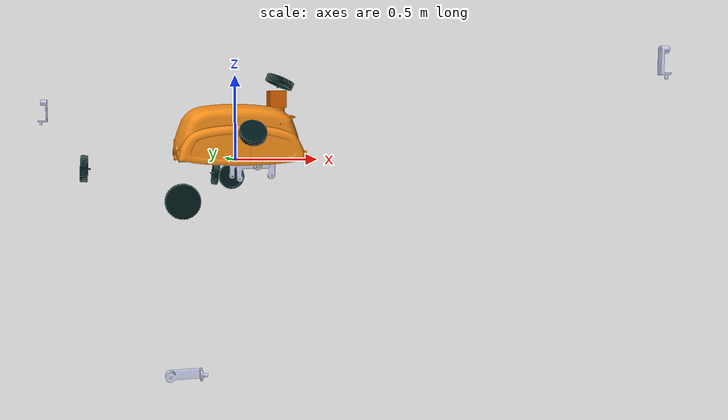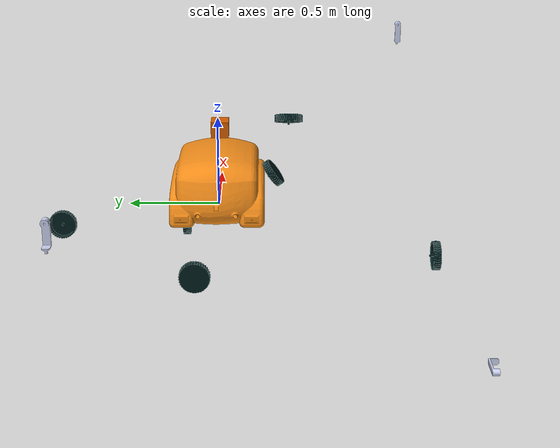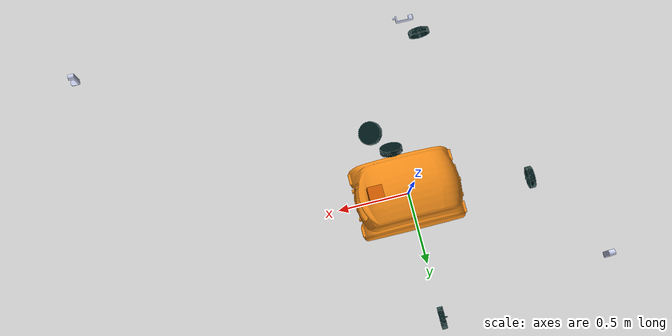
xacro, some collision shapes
<?xml version="1.0"?>

<robot name="mybot" xmlns:xacro="http://www.ros.org/wiki/xacro">

  <property name="PI" value="3.1415926535897931"/>

  <include filename="$(find mybot_description)/urdf/mybot.gazebo" />
  <include filename="$(find mybot_description)/urdf/materials.xacro" />
  <include filename="$(find mybot_description)/urdf/macros.xacro" />
  <link name="footprint" />

  <joint name="base_joint" type="fixed">
    <parent link="footprint"/>
    <child link="chassis"/>
  </joint>

  <link name="chassis">
    <collision>
      <origin xyz="0 0 0" rpy="0 0 0"/>
      <geometry>
        <mesh filename="$(find mybot_description)/meshes/base_link.dae"/>
      </geometry>
    </collision>

    <visual>
      <origin xyz="0 0 0" rpy="0 0 0"/>
      <geometry>
        <mesh filename="$(find mybot_description)/meshes/base_link.dae"/>
      </geometry>
      <material name="orange"/>
    </visual>

    <inertial>
      <origin
        xyz="0.015949855877801 0.000103286146624693 0.164331382997009"
        rpy="0 0 0" />
      <mass
        value="5.9977" />
      <inertia
        ixx="0.41015032534565"
        ixy="0.00014896595327685"
        ixz="-0.117066888026324"
        iyy="0.864297044074108"
        iyz="4.29109746619749E-05"
        izz="1.03198412493106"  />
    </inertial>
  </link>

  <!-- Pivot_Link -->
  <pivot pv="Pivot_left" neg="1"/>
  <pivot pv="Pivot_right" neg="-1"/>
  <!-- Bogie_left_Link -->
  <bogie ch="Bogie_left" pr="Pivot_left" num="1"/>
  <bogie ch="Bogie_right" pr="Pivot_right" num="-1"/>
  <!-- Frame_Link -->
  <sterring st="Frame_rear_left"  pr="Pivot_left" ori="1" xyz_ori_joint="-0.2512 0.0758502820930624 0.159624873353601" rpy_ori_joint="-1.57079632679489 0 3.14159265358979"/>
  <sterring st="Frame_front_left" pr="Bogie_left" ori="1" xyz_ori_joint="0.0230242813783894 -0.161600997729002 -0.00600000000035122" rpy_ori_joint="1.57079632679489 0 -0.965625096203858"/>
  <sterring st="Frame_front_right" pr="Bogie_right" ori="-1" xyz_ori_joint="0.0230242813783506 0.161600997729037 -0.00600000000014898" rpy_ori_joint="-1.57079632679501 0 0.965625096203942"/>
  <sterring st="Frame_rear_right" pr="Pivot_right" ori="1" xyz_ori_joint="-0.251199999999933 -0.0758502820931083 0.159624873353708" rpy_ori_joint="1.57079632679479 0 3.1415926535897"/>
  <!-- Wheel -->
  <wheel ch="Wheel_mid_left" pr="Bogie_left" ori="1" xyz_ori_joint="0.00282985115710119 0.125984094005667 0.00954399441673065" rpy_ori_joint="0 0 1.54833813158444"/>
  <wheel ch="Wheel_front_left" pr="Frame_front_left" ori="1" xyz_ori_joint="0 0.0165439944167309 -0.145999999999945" rpy_ori_joint="1.570796326795 0 3.14159265358969"/>
  <wheel ch="Wheel_rear_left" pr="Frame_rear_left" ori="1" xyz_ori_joint="0 -0.0165439944167308 -0.146" rpy_ori_joint="1.570796326795 0 0"/>
  <wheel ch="Wheel_mid_right" pr="Bogie_right" ori="1" xyz_ori_joint="0.00282985115709367 -0.125984094005641 0.00954399441663158" rpy_ori_joint="0 0 -1.5483381315845"/>
  <wheel ch="Wheel_front_right" pr="Frame_front_right" ori="1" xyz_ori_joint="0 -0.0165439944167298 -0.145999999999915" rpy_ori_joint="-1.5707963267949 0 3.14159265358969"/>
  <wheel ch="Wheel_rear_right" pr="Frame_rear_right" ori="1" xyz_ori_joint="0 0.0165439944167314 -0.145999999999968" rpy_ori_joint="-1.57079632679489 0 0"/>

  <link name="Pivot_mid_Link">
    <inertial>
      <origin
        xyz="-3.48456990945101E-06 2.25518794118029E-05 0.0732940910671185"
        rpy="0 0 0" />
      <mass
        value="0.104784306017796" />
      <inertia
        ixx="0.00030646009753961"
        ixy="-1.19640283602552E-08"
        ixz="-2.1900979102239E-08"
        iyy="0.000306535681364799"
        iyz="1.41741666936082E-07"
        izz="1.49479394387937E-05" />
    </inertial>
    <visual>
      <origin
        xyz="0 0 0"
        rpy="0 0 0" />
      <geometry>
        <mesh
          filename="$(find mybot_description)/meshes/Pivot_mid_Link.dae" />
      </geometry>
      <material
        name="">
        <color
          rgba="0.776470588235294 0.756862745098039 0.737254901960784 1" />
      </material>
    </visual>
    <collision>
      <origin
        xyz="0 0 0"
        rpy="0 0 0" />
      <geometry>
        <mesh
          filename="$(find mybot_description)/meshes/Pivot_mid_Link.dae" />
      </geometry>
    </collision>
  </link>
  <joint name="Pivot_mid_joint"
    type="revolute">
    <origin
      xyz="-0.0147751266463989 0 0.117"
      rpy="-1.5707963267949 0 1.5707963267949" />
    <parent
      link="chassis" />
    <child
      link="Pivot_mid_Link" />
    <axis
      xyz="0 0 -1" />
    <safety_controller
      k_velocity="0" />
    <joint_properties damping="0.0" friction="0.0"/>
    <limit lower="-0.4" upper="0.4" effort="10000.0" velocity="10.0"/>
  </joint>

  <gazebo reference="Pivot_mid_Link">
    <self_collide>1</self_collide>
  </gazebo>

  <!-- camera front -->
  <joint name="camera_joint_front" type="fixed">
    <origin xyz="0.383 0 0.080" rpy="0 0 0"/>
    <parent link="chassis"/>
    <child link="camera_link"/>
  </joint>

  <link name="camera_link">
    <collision>
      <origin xyz="0.005 0.011 0.013" rpy="0 0 0"/>
      <geometry>
        <box size="0.015 0.030 0.027"/>
      </geometry>
    </collision>
  </link>

 <joint name="camera_rgb_joint" type="fixed">
    <origin xyz="0.003 0.011 0.009" rpy="0 0 0"/>
    <parent link="camera_link"/>
    <child link="camera_rgb_frame"/>
  </joint>
  <link name="camera_rgb_frame"/>

  <joint name="camera_rgb_optical_joint" type="fixed">
    <origin xyz="0 0 0" rpy="-1.57 0 -1.57"/>
    <parent link="camera_rgb_frame"/>
    <child link="camera_rgb_optical_frame"/>
  </joint>
  <link name="camera_rgb_optical_frame"/>

  <gazebo reference="camera_rgb_frame">
    <sensor type="depth" name="Pi Camera">
      <always_on>true</always_on>
      <visualize>false</visualize>
      <camera>
          <horizontal_fov>1.085595</horizontal_fov>
          <image>
              <width>640</width>
              <height>480</height>
              <format>R8G8B8</format>
          </image>
          <clip>
              <near>0.03</near>
              <far>100</far>
          </clip>
      </camera>
      <plugin name="camera_controller" filename="libgazebo_ros_openni_kinect.so">
      <!-- libgazebo_ros_openni_kinect -->
        <alwaysOn>true</alwaysOn>
        <updateRate>30.0</updateRate>
        <cameraName>camera</cameraName>
        <frameName>camera_rgb_optical_frame</frameName>
        <imageTopicName>rgb/image_raw</imageTopicName>
        <cameraInfoTopicName>rgb/camera_info</cameraInfoTopicName>

        <depthImageTopicName>rgb/image_depth</depthImageTopicName>
        <depthImageInfoTopicName>rgb/camera_depth_info</depthImageInfoTopicName>
        <pointCloudTopicName>rgb/image_depth/points</pointCloudTopicName>

        <pointCloudCutoff>0.05</pointCloudCutoff>
        <pointCloudCutoffMax>10.0</pointCloudCutoffMax>
        <rangeMax>30.0</rangeMax>

        <hackBaseline>0.07</hackBaseline>
        <distortionK1>0.0</distortionK1>
        <distortionK2>0.0</distortionK2>
        <distortionK3>0.0</distortionK3>
        <distortionT1>0.0</distortionT1>
        <distortionT2>0.0</distortionT2>
      </plugin>
    </sensor>
  </gazebo>

  <!-- camera left -->
  <joint name="camera_joint_left" type="fixed">
    <origin xyz="0.010 0.220 0.228" rpy="0 0 1.57"/>
    <parent link="chassis"/>
    <child link="camera_link_left"/>
  </joint>

  <link name="camera_link_left">
    <collision>
      <origin xyz="0.005 0.011 0.013" rpy="0 0 0"/>
      <geometry>
        <box size="0.015 0.030 0.027"/>
      </geometry>
    </collision>
  </link>

 <joint name="camera_rgb_joint_left" type="fixed">
    <origin xyz="0.003 0.011 0.009" rpy="0 0 0"/>
    <parent link="camera_link_left"/>
    <child link="camera_rgb_frame_left"/>
  </joint>
  <link name="camera_rgb_frame_left"/>

  <joint name="camera_rgb_optical_joint_left" type="fixed">
    <origin xyz="0 0 0" rpy="-1.57 0 -1.57"/>
    <parent link="camera_rgb_frame_left"/>
    <child link="camera_rgb_optical_frame_left"/>
  </joint>
  <link name="camera_rgb_optical_frame_left"/>

  <gazebo reference="camera_rgb_frame_left">
    <sensor type="depth" name="Pi Camera">
      <always_on>true</always_on>
      <visualize>false</visualize>
      <camera>
          <horizontal_fov>1.085595</horizontal_fov>
          <image>
              <width>640</width>
              <height>480</height>
              <format>R8G8B8</format>
          </image>
          <clip>
              <near>0.03</near>
              <far>100</far>
          </clip>
      </camera>
      <plugin name="camera_controller" filename="libgazebo_ros_openni_kinect.so">
      <!-- libgazebo_ros_openni_kinect -->
        <alwaysOn>true</alwaysOn>
        <updateRate>30.0</updateRate>
        <cameraName>camera</cameraName>
        <frameName>camera_rgb_optical_frame_left</frameName>
        <imageTopicName>rgb_left/image_raw</imageTopicName>
        <cameraInfoTopicName>rgb_left/camera_info</cameraInfoTopicName>

        <depthImageTopicName>rgb_left/image_depth</depthImageTopicName>
        <depthImageInfoTopicName>rgb_left/camera_depth_info</depthImageInfoTopicName>
        <pointCloudTopicName>rgb_left/image_depth/points</pointCloudTopicName>

        <pointCloudCutoff>0.05</pointCloudCutoff>
        <pointCloudCutoffMax>10.0</pointCloudCutoffMax>
        <rangeMax>30.0</rangeMax>

        <hackBaseline>0.07</hackBaseline>
        <distortionK1>0.0</distortionK1>
        <distortionK2>0.0</distortionK2>
        <distortionK3>0.0</distortionK3>
        <distortionT1>0.0</distortionT1>
        <distortionT2>0.0</distortionT2>
      </plugin>
    </sensor>
  </gazebo>

  <!-- camera right -->
  <joint name="camera_joint_right" type="fixed">
    <origin xyz="0.010 -0.220 0.228" rpy="0 0 -1.57"/>
    <parent link="chassis"/>
    <child link="camera_link_right"/>
  </joint>

  <link name="camera_link_right">
    <collision>
      <origin xyz="0.005 0.011 0.013" rpy="0 0 0"/>
      <geometry>
        <box size="0.015 0.030 0.027"/>
      </geometry>
    </collision>
  </link>

 <joint name="camera_rgb_joint_right" type="fixed">
    <origin xyz="0.003 0.011 0.009" rpy="0 0 0"/>
    <parent link="camera_link_right"/>
    <child link="camera_rgb_frame_right"/>
  </joint>
  <link name="camera_rgb_frame_right"/>

  <joint name="camera_rgb_optical_joint_right" type="fixed">
    <origin xyz="0 0 0" rpy="-1.57 0 -1.57"/>
    <parent link="camera_rgb_frame_right"/>
    <child link="camera_rgb_optical_frame_right"/>
  </joint>
  <link name="camera_rgb_optical_frame_right"/>

  <gazebo reference="camera_rgb_frame_right">
    <sensor type="depth" name="Pi Camera">
      <always_on>true</always_on>
      <visualize>false</visualize>
      <camera>
          <horizontal_fov>1.085595</horizontal_fov>
          <image>
              <width>640</width>
              <height>480</height>
              <format>R8G8B8</format>
          </image>
          <clip>
              <near>0.03</near>
              <far>100</far>
          </clip>
      </camera>
      <plugin name="camera_controller" filename="libgazebo_ros_openni_kinect.so">
      <!-- libgazebo_ros_openni_kinect -->
        <alwaysOn>true</alwaysOn>
        <updateRate>30.0</updateRate>
        <cameraName>camera</cameraName>
        <frameName>camera_rgb_optical_frame_right</frameName>
        <imageTopicName>rgb_right/image_raw</imageTopicName>
        <cameraInfoTopicName>rgb_right/camera_info</cameraInfoTopicName>

        <depthImageTopicName>rgb_right/image_depth</depthImageTopicName>
        <depthImageInfoTopicName>rgb_right/camera_depth_info</depthImageInfoTopicName>
        <pointCloudTopicName>rgb_right/image_depth/points</pointCloudTopicName>

        <pointCloudCutoff>0.05</pointCloudCutoff>
        <pointCloudCutoffMax>10.0</pointCloudCutoffMax>
        <rangeMax>30.0</rangeMax>

        <hackBaseline>0.07</hackBaseline>
        <distortionK1>0.0</distortionK1>
        <distortionK2>0.0</distortionK2>
        <distortionK3>0.0</distortionK3>
        <distortionT1>0.0</distortionT1>
        <distortionT2>0.0</distortionT2>
      </plugin>
    </sensor>
  </gazebo>

  <!-- camera rear -->
  <joint name="camera_joint_rear" type="fixed">
    <origin xyz="-0.361 0 0.113" rpy="0 0 3.14"/>
    <parent link="chassis"/>
    <child link="camera_link_rear"/>
  </joint>

  <link name="camera_link_rear">
    <collision>
      <origin xyz="0.005 0.011 0.013" rpy="0 0 0"/>
      <geometry>
        <box size="0.015 0.030 0.027"/>
      </geometry>
    </collision>
  </link>

 <joint name="camera_rgb_joint_rear" type="fixed">
    <origin xyz="0.003 0.011 0.009" rpy="0 0 0"/>
    <parent link="camera_link_rear"/>
    <child link="camera_rgb_frame_rear"/>
  </joint>
  <link name="camera_rgb_frame_rear"/>

  <joint name="camera_rgb_optical_joint_rear" type="fixed">
    <origin xyz="0 0 0" rpy="-1.57 0 -1.57"/>
    <parent link="camera_rgb_frame_rear"/>
    <child link="camera_rgb_optical_frame_rear"/>
  </joint>
  <link name="camera_rgb_optical_frame_rear"/>

  <gazebo reference="camera_rgb_frame_rear">
    <sensor type="depth" name="Pi Camera">
      <always_on>true</always_on>
      <visualize>false</visualize>
      <camera>
          <horizontal_fov>1.085595</horizontal_fov>
          <image>
              <width>640</width>
              <height>480</height>
              <format>R8G8B8</format>
          </image>
          <clip>
              <near>0.03</near>
              <far>100</far>
          </clip>
      </camera>
      <plugin name="camera_controller" filename="libgazebo_ros_openni_kinect.so">
      <!-- libgazebo_ros_openni_kinect -->
        <alwaysOn>true</alwaysOn>
        <updateRate>30.0</updateRate>
        <cameraName>camera</cameraName>
        <frameName>camera_rgb_optical_frame_rear</frameName>
        <imageTopicName>rgb_rear/image_raw</imageTopicName>
        <cameraInfoTopicName>rgb_rear/camera_info</cameraInfoTopicName>

        <depthImageTopicName>rgb_rear/image_depth</depthImageTopicName>
        <depthImageInfoTopicName>rgb_rear/camera_depth_info</depthImageInfoTopicName>
        <pointCloudTopicName>rgb_rear/image_depth/points</pointCloudTopicName>

        <pointCloudCutoff>0.05</pointCloudCutoff>
        <pointCloudCutoffMax>10.0</pointCloudCutoffMax>
        <rangeMax>30.0</rangeMax>

        <hackBaseline>0.07</hackBaseline>
        <distortionK1>0.0</distortionK1>
        <distortionK2>0.0</distortionK2>
        <distortionK3>0.0</distortionK3>
        <distortionT1>0.0</distortionT1>
        <distortionT2>0.0</distortionT2>
      </plugin>
    </sensor>
  </gazebo>

  <!-- Hokuyo Laser -->
  <!-- laser -->
  <joint name="hokuyo_joint" type="fixed">
    <axis xyz="0 1 0" />
    <origin xyz="0.250 0.0 0.362" rpy="0 0 0"/>
    <parent link="chassis"/>
    <child link="hokuyo_link"/>
  </joint>

  <link name="hokuyo_link">
    <collision>
      <origin xyz="0 0 0" rpy="0 0 0"/>
      <geometry>
    <box size="0.1 0.1 0.1"/>
      </geometry>
    </collision>

    <visual>
      <origin xyz="0 0 0" rpy="0 0 0"/>
      <geometry>
        <mesh filename="$(find mybot_description)/meshes/hokuyo.dae"/>
      </geometry>
    </visual>

    <inertial>
      <mass value="1e-5" />
      <origin xyz="0 0 0" rpy="0 0 0"/>
      <inertia ixx="1e-6" ixy="0" ixz="0" iyy="1e-6" iyz="0" izz="1e-6" />
    </inertial>
  </link>

  <gazebo reference="hokuyo_link">
      <sensor type="ray" name="head_hokuyo_sensor">
        <pose>0 0 0 0 0 0</pose>
        <visualize>true</visualize>
        <update_rate>30</update_rate>
        <ray>
          <scan>

            <horizontal>
              <samples>720</samples>
              <resolution>1.0</resolution>
              <min_angle>1.57</min_angle>
              <max_angle>-1.57</max_angle>
            </horizontal>

          </scan>
          <range>
            <min>0.1</min>
            <max>10.0</max>
            <resolution>0.01</resolution>
          </range>
          <noise>
            <type>gaussian</type>
            <mean>0.0</mean>
            <stddev>0.01</stddev>
          </noise>
        </ray>
        <plugin name="gazebo_ros_head_hokuyo_controller" filename="libgazebo_ros_laser.so">
          <topicName>/husky/laser/scan</topicName>
          <frameName>hokuyo_link</frameName>
        </plugin>
      </sensor>
    </gazebo>

</robot>

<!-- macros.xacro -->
<robot>

<!-- ****************************************sterring******************************************** -->
    <macro name="sterring" params="st pr ori xyz_ori_joint rpy_ori_joint" >

      <link
        name="${st}_Link">
        <inertial>
          <origin
            xyz="${ori*-0.000100729773299224} ${ori*-0.022707717448498} -0.0946007357290982"
            rpy="0 0 0" />
          <mass
            value="1.110802029012366" />
          <inertia
            ixx="0.00032454182493778"
            ixy="-9.42745264395349E-08"
            ixz="${ori*1.05486102205035E-07}"
            iyy="0.000313625372879202"
            iyz="${ori*-1.07033038351386E-05}"
            izz="3.60621586312286E-05" />
        </inertial>
        <visual>
          <origin
            xyz="0 0 0"
            rpy="0 0 0" />
          <geometry>
            <mesh
              filename="$(find mybot_description)/meshes/${st}_Link.dae" />
          </geometry>
          <material
            name="">
            <color
              rgba="0.792156862745098 0.819607843137255 0.933333333333333 1" />
          </material>
        </visual>
        <collision>
          <origin
            xyz="0 0 0"
            rpy="0 0 0" />
          <geometry>
            <mesh
              filename="$(find mybot_description)/meshes/${st}_Link.dae" />
          </geometry>
        </collision>
      </link>

      <joint
        name="${st}_joint"
        type="revolute">
        <origin
          xyz="${xyz_ori_joint}"
          rpy="${rpy_ori_joint}" />
        <parent
          link="${pr}_Link" />
        <child
          link="${st}_Link" />
        <axis
          xyz="0 0 1" />
        <safety_controller
          k_velocity="0" />
        <joint_properties damping="0.5" friction="0.5"/>
        <limit lower="-0.6" upper="0.6" effort="10000.0" velocity="10.0"/>
      </joint>

      <transmission name="${st}_trans">
        <type>transmission_interface/SimpleTransmission</type>
        <joint name="${st}_joint">
          <hardwareInterface>hardware_interface/EffortJointInterface</hardwareInterface>
        </joint>
        <actuator name="${st}_Motor">
          <hardwareInterface>hardware_interface/EffortJointInterface</hardwareInterface>
          <mechanicalReduction>1</mechanicalReduction>
        </actuator>
      </transmission>

      <gazebo reference="${st}_Link">
        <mu1>0.3</mu1>
        <mu2>0.3</mu2>
        <self_collide>1</self_collide>
      </gazebo>
    </macro>

<!-- ****************************************bogie*********************************************** -->
    <macro name="bogie" params="ch pr num">
      <link
        name="${ch}_Link">
        <inertial>
          <origin
            xyz="-0.000163032997340468 ${num*-0.0332177038859611} -0.0358157719860211"
            rpy="0 0 0" />
          <mass
            value="1.298477821339867" />
          <inertia
            ixx="0.00305008410077296"
            ixy="${num*0.00047188421709313}"
            ixz="-3.32375151751435E-05"
            iyy="0.000246965375315985"
            iyz="${num*0.000128055788099926}"
            izz="0.00318546306770007" />
        </inertial>
        <visual>
          <origin
            xyz="0 0 0"
            rpy="0 0 0" />
          <geometry>
            <mesh
              filename="$(find mybot_description)/meshes/${ch}_Link.dae" />
          </geometry>
          <material
            name="">
            <color
              rgba="0.792156862745098 0.819607843137255 0.933333333333333 1" />
          </material>
        </visual>
        <collision>
          <origin
            xyz="0 0 0"
            rpy="0 0 0" />
          <geometry>
            <mesh
              filename="$(find mybot_description)/meshes/${ch}_Link.dae" />
          </geometry>
        </collision>
      </link>

      <joint
        name="${ch}_joint"
        type="revolute">
        <origin
          xyz="0.101899068442028 ${num*0.147305052609851} 0.176624873353953"
          rpy="0 0 ${num*0.965625096203858}" />
        <parent
          link="${pr}_Link" />
        <child
          link="${ch}_Link" />
        <axis
          xyz="0 0 1" />
        <safety_controller
          k_velocity="0" />
        <joint_properties damping="0.0" friction="0.0"/>
        <limit lower="-0.4" upper="0.4" effort="10000.0" velocity="10.0"/>
      </joint>

      <transmission name="${ch}_trans">
        <type>transmission_interface/SimpleTransmission</type>
        <joint name="${ch}_joint">
          <hardwareInterface>hardware_interface/EffortJointInterface</hardwareInterface>
        </joint>
        <actuator name="${ch}_Motor">
          <hardwareInterface>hardware_interface/EffortJointInterface</hardwareInterface>
          <mechanicalReduction>1</mechanicalReduction>
        </actuator>
      </transmission>

      <gazebo reference="${ch}_Link">
        <mu1>0.3</mu1>
        <mu2>0.3</mu2>
        <self_collide>1</self_collide>
      </gazebo>

    </macro>

<!-- ****************************************pivot*********************************************** -->
    <macro name="pivot" params="pv neg">
      <link
        name="${pv}_Link">
        <inertial>
          <origin
            xyz="-0.0271565201264132 ${neg*0.0508106635743816} 0.146224780268945"
            rpy="0 0 0" />
          <mass
            value="1.673533131559532" />
          <inertia
            ixx="0.00224562283628407"
            ixy="${neg*0.000201455492383518}"
            ixz="0.000244167017551039"
            iyy="0.0110029093831226"
            iyz="${neg*-0.000459664852748368}"
            izz="0.011223380102129" />
        </inertial>
        <visual>
          <origin
            xyz="0 0 0"
            rpy="0 0 0" />
          <geometry>
            <mesh
              filename="$(find mybot_description)/meshes/${pv}_Link.dae" />
          </geometry>
          <material
            name="">
            <color
              rgba="0.776470588235294 0.756862745098039 0.737254901960784 1" />
          </material>
        </visual>
        <collision>
          <origin
            xyz="0 0 0"
            rpy="0 0 0" />
          <geometry>
            <mesh
              filename="$(find mybot_description)/meshes/${pv}_Link.dae" />
          </geometry>
        </collision>
      </link>

      <!-- Pivot_joint -->
      <joint
        name="${pv}_joint"
        type="revolute">
        <origin
          xyz="0 ${neg*0.014975126646098} 0.116999999999989"
          rpy="${neg*-1.57079632679479} 0 0" />
        <parent
          link="chassis" />
        <child
          link="${pv}_Link" />
        <axis
          xyz="0 0 -1" />
        <safety_controller
          k_velocity="0" />
        <joint_properties damping="0.0" friction="0.0"/>
        <limit lower="-0.4" upper="0.4" effort="10000.0" velocity="10.0"/>
      </joint>

      <!-- transmission -->
      <transmission name="${pv}_trans">
        <type>transmission_interface/SimpleTransmission</type>
        <joint name="${pv}_joint">
          <hardwareInterface>hardware_interface/EffortJointInterface</hardwareInterface>
        </joint>
        <actuator name="${pv}_Motor">
          <hardwareInterface>hardware_interface/EffortJointInterface</hardwareInterface>
          <mechanicalReduction>1</mechanicalReduction>
        </actuator>
      </transmission>

      <!-- gazebo -->
      <gazebo reference="${pv}_Link">
        <mu1>0.3</mu1>
        <mu2>0.3</mu2>
        <self_collide>1</self_collide>
      </gazebo>
    </macro>
<!-- ****************************************wheel*********************************************** -->
    <macro name="wheel" params="ch pr ori xyz_ori_joint rpy_ori_joint">
      <link
        name="${ch}_Link">
        <inertial>
          <origin
            xyz="0 0  -0.0137009284721737"
            rpy="0 0 0" />
          <mass
            value="1.24329720911457" />
          <inertia
            ixx="0.000524143243554882"
            ixy="0"
            ixz="0"
            iyy="0.000524143243554873"
            iyz="0"
            izz="0.0009729853744639" />
        </inertial>
        <visual>
          <origin
            xyz="0 0 0"
            rpy="0 0 0" />
          <geometry>
            <mesh
              filename="$(find mybot_description)/meshes/${ch}_Link.dae" />
          </geometry>
          <material
            name="">
            <color
              rgba="0.0 0.1 0.1 1" />
          </material>
        </visual>
        <collision>
          <origin
            xyz="0 0 0"
            rpy="0 0 0" />
          <geometry>
            <mesh
              filename="$(find mybot_description)/meshes/${ch}_Link.dae" />
          </geometry>
        </collision>
      </link>

      <joint
        name="${ch}_joint"
        type="continuous">
        <origin
          xyz="${xyz_ori_joint}"
          rpy="${rpy_ori_joint}" />
        <parent link="${pr}_Link" />
        <child link="${ch}_Link" />
        <axis xyz="0 0 1" />
        <limit effort="10000.0" velocity="100.0"/>
        <safety_controller k_velocity="0" />
        <joint_properties damping="0.0" friction="0.0"/>
      </joint>

      <transmission name="${ch}_trans">
        <type>transmission_interface/SimpleTransmission</type>
        <joint name="${ch}_joint">
          <hardwareInterface>hardware_interface/EffortJointInterface</hardwareInterface>
        </joint>
        <actuator name="${ch}_Motor">
          <hardwareInterface>hardware_interface/EffortJointInterface</hardwareInterface>
          <mechanicalReduction>1</mechanicalReduction>
        </actuator>
      </transmission>

      <gazebo reference="${ch}_Link">
        <mu1 value="1.0"/>
        <mu2 value="1.0"/>
        <kp  value="10000000.0" />
        <kd>100.0</kd>
        <fdir1 value="1 0 0"/>
        <minDepth>0.001</minDepth>
        <maxVel>1.0</maxVel>
        <material>Gazebo/Black</material>
        <self_collide>1</self_collide>
      </gazebo>
    </macro>

</robot>
